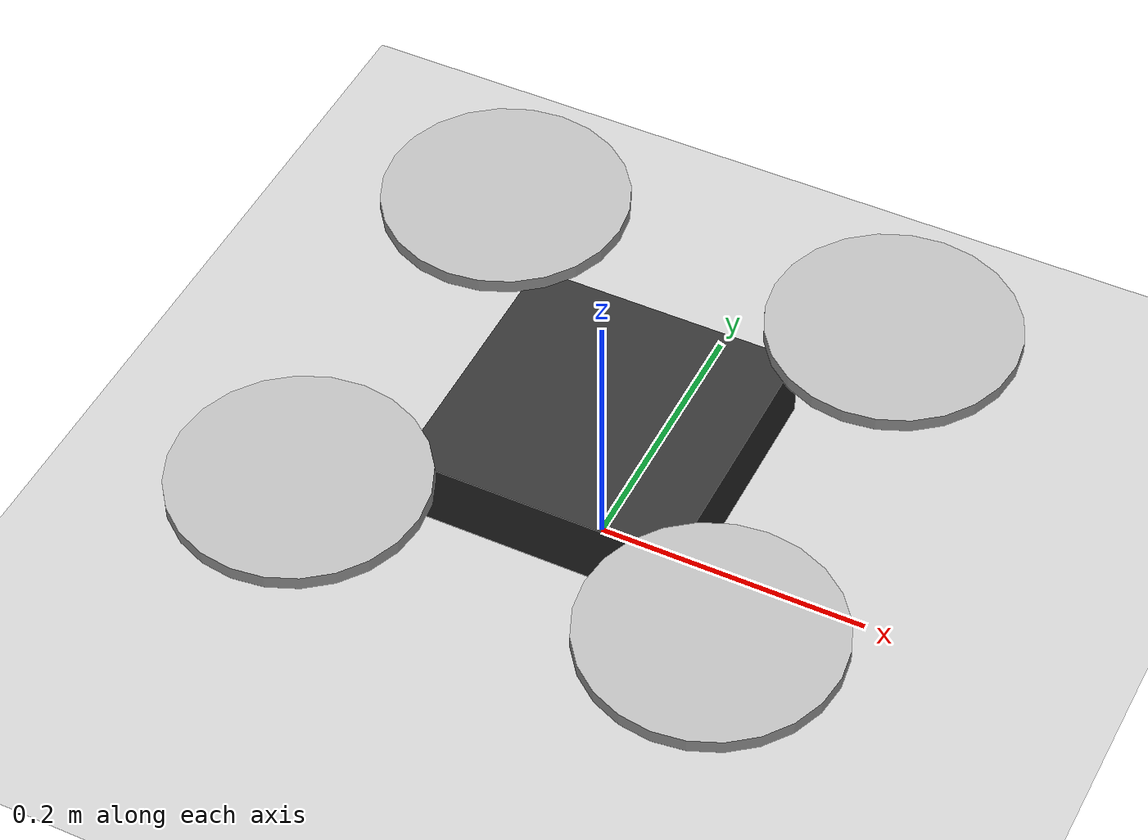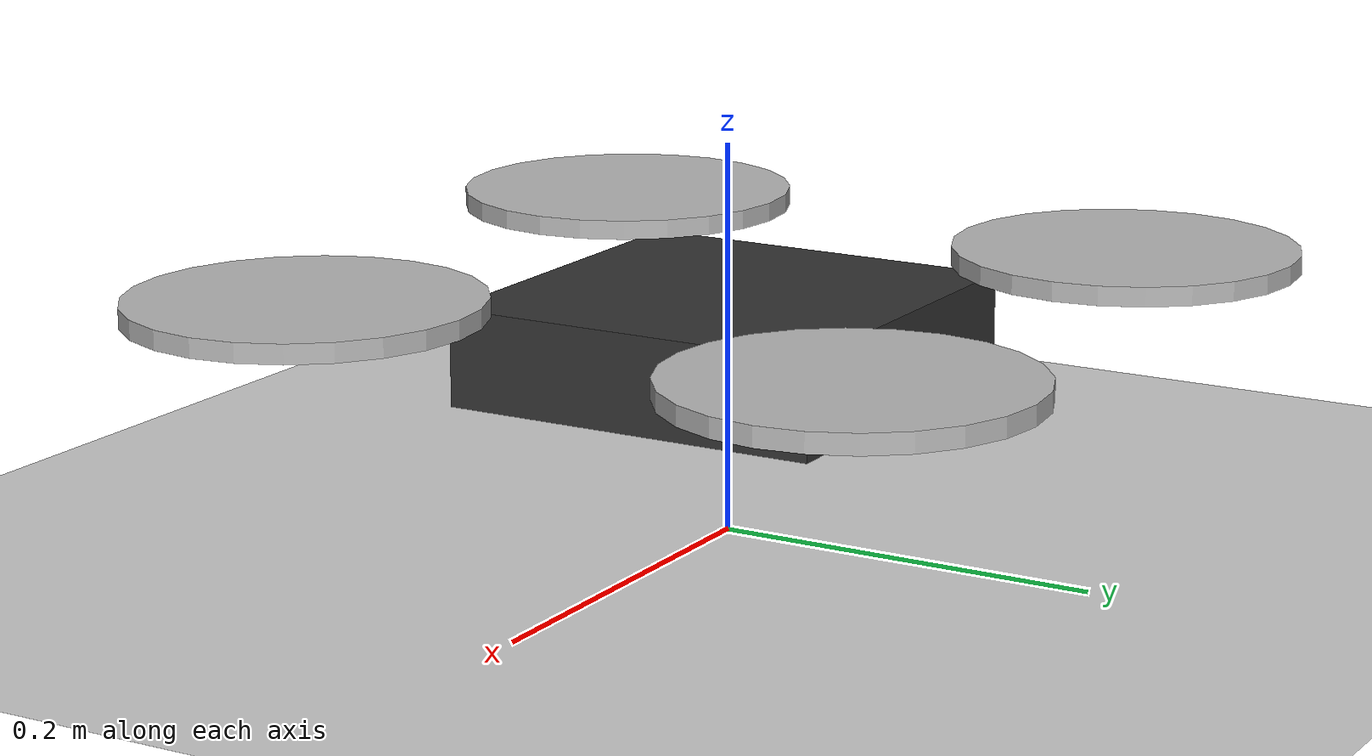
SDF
<?xml version="1.0" ?>
<sdf version="1.6">
  <world name="default">
    <include>
      <uri>model://sun</uri>
    </include>
    <include>
      <uri>model://ground_plane</uri>
    </include>

    <include>
      <uri>model://fpv_drone</uri>
      <pose>0 0 0.1 0 0 0</pose>
    </include>

    <physics type="ode">
      <max_step_size>0.001</max_step_size>
      <real_time_factor>1</real_time_factor>
      <real_time_update_rate>1000</real_time_update_rate>
    </physics>

    <gui fullscreen='0'>
      <camera name='user_camera'>
        <pose>5 -5 2 0 0.27 2.35</pose>
      </camera>
    </gui>
  </world>
</sdf>

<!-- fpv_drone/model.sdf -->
<sdf version="1.6">
  <model name="fpv_drone">
    <pose>0 0 0.1 0 0 0</pose>

    <!-- Base Link -->
    <link name="base_link">
      <inertial>
        <mass>0.8</mass> <!-- Approx weight for a 7-inch drone -->
        <inertia>
          <ixx>0.005</ixx>
          <iyy>0.005</iyy>
          <izz>0.009</izz>
        </inertia>
      </inertial>
      <collision name="collision">
        <geometry>
          <box><size>0.2 0.2 0.05</size></box>
        </geometry>
      </collision>
      <visual name="visual">
        <geometry>
          <box><size>0.2 0.2 0.05</size></box>
        </geometry>
        <material>
          <ambient>0.2 0.2 0.2 1</ambient>
          <diffuse>0.2 0.2 0.2 1</diffuse>
        </material>
      </visual>
    </link>

    <!-- Rotors (4 for Quadcopter) -->
    <!-- Front Right -->
    <link name="rotor_0">
      <pose>0.15 -0.15 0.03 0 0 0</pose>
      <inertial>
        <mass>0.01</mass>
        <inertia>
          <ixx>1e-06</ixx><iyy>1e-06</iyy><izz>1e-06</izz>
        </inertia>
      </inertial>
      <visual name="visual">
        <geometry>
          <cylinder><radius>0.09</radius><length>0.01</length></cylinder>
        </geometry>
      </visual>
    </link>
    <joint name="rotor_0_joint" type="revolute">
      <parent>base_link</parent>
      <child>rotor_0</child>
      <axis>
        <xyz>0 0 1</xyz>
      </axis>
    </joint>

    <!-- Front Left -->
    <link name="rotor_1">
      <pose>0.15 0.15 0.03 0 0 0</pose>
      <inertial>
        <mass>0.01</mass>
        <inertia>
          <ixx>1e-06</ixx><iyy>1e-06</iyy><izz>1e-06</izz>
        </inertia>
      </inertial>
      <visual name="visual">
        <geometry>
          <cylinder><radius>0.09</radius><length>0.01</length></cylinder>
        </geometry>
      </visual>
    </link>
    <joint name="rotor_1_joint" type="revolute">
      <parent>base_link</parent>
      <child>rotor_1</child>
      <axis>
        <xyz>0 0 1</xyz>
      </axis>
    </joint>

    <!-- Back Left -->
    <link name="rotor_2">
      <pose>-0.15 0.15 0.03 0 0 0</pose>
      <inertial>
        <mass>0.01</mass>
        <inertia>
          <ixx>1e-06</ixx><iyy>1e-06</iyy><izz>1e-06</izz>
        </inertia>
      </inertial>
      <visual name="visual">
        <geometry>
          <cylinder><radius>0.09</radius><length>0.01</length></cylinder>
        </geometry>
      </visual>
    </link>
    <joint name="rotor_2_joint" type="revolute">
      <parent>base_link</parent>
      <child>rotor_2</child>
      <axis>
        <xyz>0 0 1</xyz>
      </axis>
    </joint>

    <!-- Back Right -->
    <link name="rotor_3">
      <pose>-0.15 -0.15 0.03 0 0 0</pose>
      <inertial>
        <mass>0.01</mass>
        <inertia>
          <ixx>1e-06</ixx><iyy>1e-06</iyy><izz>1e-06</izz>
        </inertia>
      </inertial>
      <visual name="visual">
        <geometry>
          <cylinder><radius>0.09</radius><length>0.01</length></cylinder>
        </geometry>
      </visual>
    </link>
    <joint name="rotor_3_joint" type="revolute">
      <parent>base_link</parent>
      <child>rotor_3</child>
      <axis>
        <xyz>0 0 1</xyz>
      </axis>
    </joint>

    <!-- ArduPilot / Betaflight Plugin (configured for Betaflight SITL) -->
    <plugin name="betaflight_plugin" filename="libArduPilotPlugin.so">
      <fdm_addr>127.0.0.1</fdm_addr>
      <fdm_port_in>9002</fdm_port_in>
      <fdm_port_out>9003</fdm_port_out>
      <!-- Betaflight uses standard motor order for quad_x -->
      <modelXYZToRunwayXYZ>0 0 0 0 0 0</modelXYZToRunwayXYZ>
      <gazeboXYZToNED>0 0 0 0 0 0</gazeboXYZToNED>
      <imuName>base_link::imu_sensor</imuName>
      <connectionTimeoutMaxCount>5</connectionTimeoutMaxCount>
      <control channel="0">
        <type>VELOCITY</type>
        <offset>0</offset>
        <p_gain>0.2</p_gain>
        <i_gain>0</i_gain>
        <d_gain>0</d_gain>
        <i_max>0</i_max>
        <i_min>0</i_min>
        <cmd_max>1000</cmd_max>
        <cmd_min>-1000</cmd_min>
        <jointName>rotor_0_joint</jointName>
        <multiplier>100</multiplier>
        <controlVelocitySlowdownSim>1</controlVelocitySlowdownSim>
      </control>
      <control channel="1">
        <type>VELOCITY</type>
        <offset>0</offset>
        <p_gain>0.2</p_gain>
        <i_gain>0</i_gain>
        <d_gain>0</d_gain>
        <i_max>0</i_max>
        <i_min>0</i_min>
        <cmd_max>1000</cmd_max>
        <cmd_min>-1000</cmd_min>
        <jointName>rotor_1_joint</jointName>
        <multiplier>100</multiplier>
        <controlVelocitySlowdownSim>1</controlVelocitySlowdownSim>
      </control>
      <control channel="2">
        <type>VELOCITY</type>
        <offset>0</offset>
        <p_gain>0.2</p_gain>
        <i_gain>0</i_gain>
        <d_gain>0</d_gain>
        <i_max>0</i_max>
        <i_min>0</i_min>
        <cmd_max>1000</cmd_max>
        <cmd_min>-1000</cmd_min>
        <jointName>rotor_2_joint</jointName>
        <multiplier>100</multiplier>
        <controlVelocitySlowdownSim>1</controlVelocitySlowdownSim>
      </control>
      <control channel="3">
        <type>VELOCITY</type>
        <offset>0</offset>
        <p_gain>0.2</p_gain>
        <i_gain>0</i_gain>
        <d_gain>0</d_gain>
        <i_max>0</i_max>
        <i_min>0</i_min>
        <cmd_max>1000</cmd_max>
        <cmd_min>-1000</cmd_min>
        <jointName>rotor_3_joint</jointName>
        <multiplier>100</multiplier>
        <controlVelocitySlowdownSim>1</controlVelocitySlowdownSim>
      </control>
    </plugin>
  </model>
</sdf>
